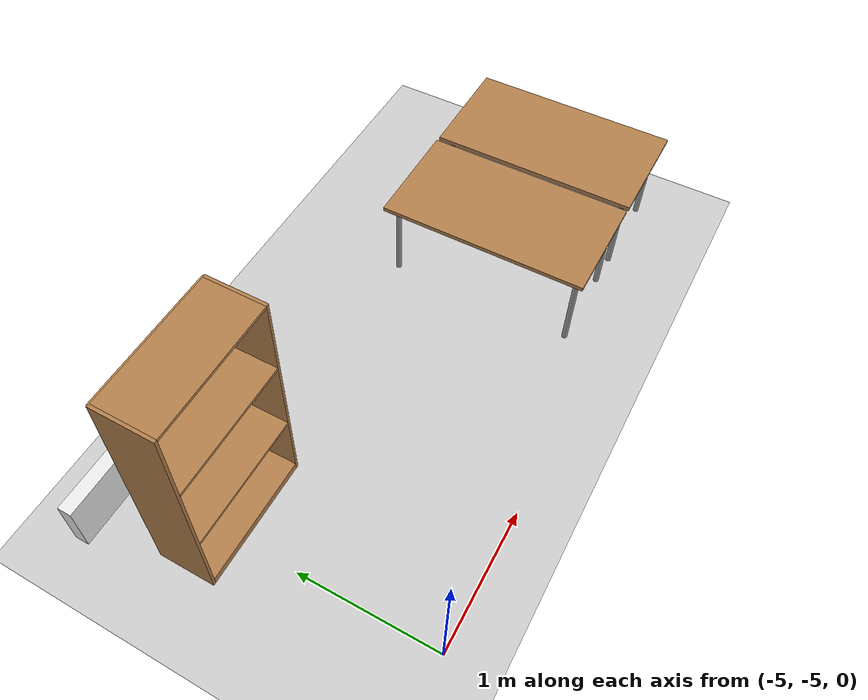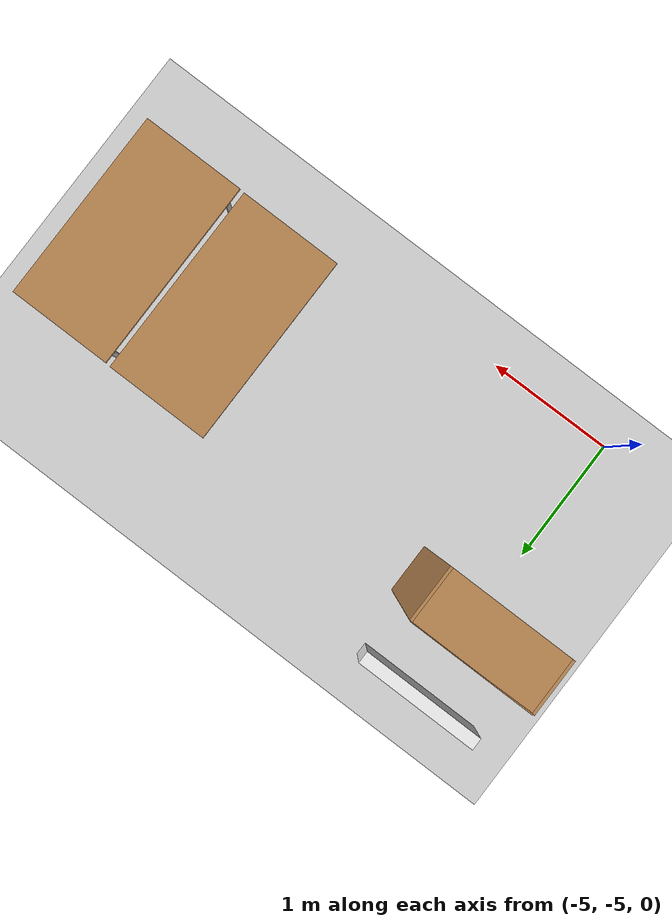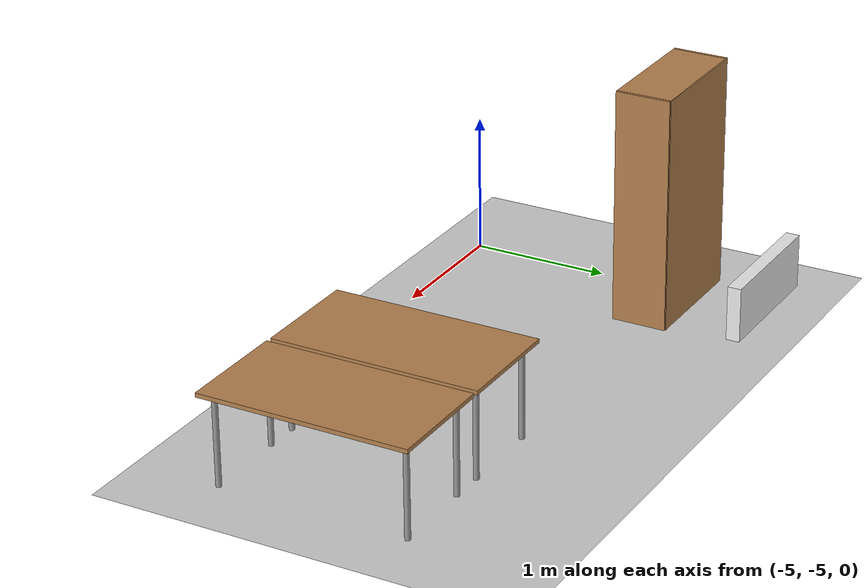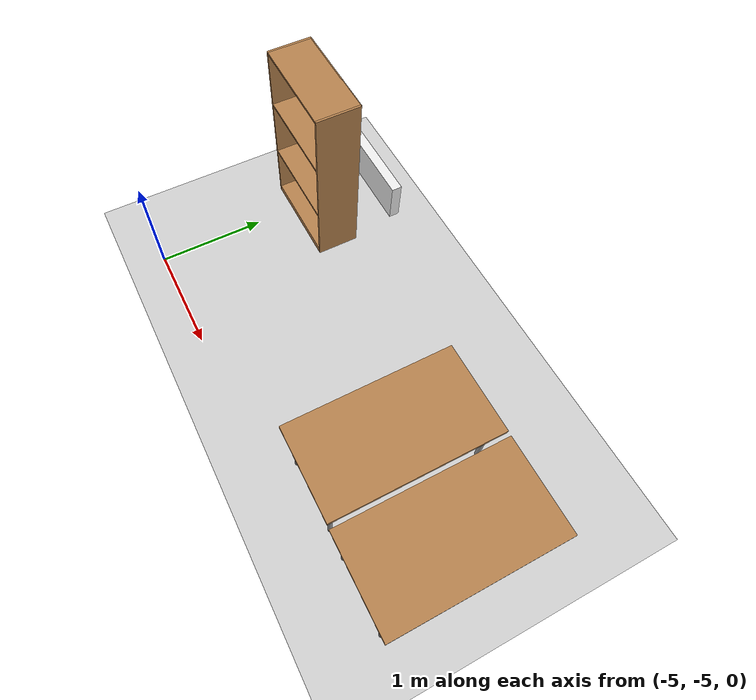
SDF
<sdf version="1.6">
 <world name="default">
  <model name="ground_plane">
   <static>1</static>
   <link name="link">
    <collision name="collision">
     <geometry><plane><normal>0 0 1</normal><size>100 100</size></plane></geometry>
     <surface>
      <contact><collide_bitmask>65535</collide_bitmask></contact>
      <friction><ode><mu>100</mu><mu2>50</mu2></ode></friction>
     </surface>
    </collision>
    <visual name="visual">
     <cast_shadows>0</cast_shadows>
     <geometry><plane><normal>0 0 1</normal><size>100 100</size></plane></geometry>
     <material>
      <script><uri>file://media/materials/scripts/gazebo.material</uri><name>Gazebo/Grey</name></script>
     </material>
    </visual>
   </link>
  </model>
  <model name="table">
   <link name="link">
    <pose>0 0 0 0 -0 1.57</pose>
    <visual name="visual1">
     <pose>0 0 0.67 0 -0 0</pose>
     <geometry><box><size>1.5 0.8 0.03</size></box></geometry>
     <material>
      <script><uri>file://media/materials/scripts/gazebo.material</uri><name>Gazebo/Wood</name></script>
     </material>
    </visual>
    <visual name="front_left_leg">
     <pose>0.68 0.3 0.335 0 -0 0</pose>
     <geometry><cylinder><radius>0.02</radius><length>0.67</length></cylinder></geometry>
     <material>
      <script><uri>file://media/materials/scripts/gazebo.material</uri><name>Gazebo/Grey</name></script>
     </material>
    </visual>
    <visual name="front_right_leg">
     <pose>0.68 -0.3 0.335 0 -0 0</pose>
     <geometry><cylinder><radius>0.02</radius><length>0.67</length></cylinder></geometry>
     <material>
      <script><uri>file://media/materials/scripts/gazebo.material</uri><name>Gazebo/Grey</name></script>
     </material>
    </visual>
    <visual name="back_right_leg">
     <pose>-0.68 -0.3 0.335 0 -0 0</pose>
     <geometry><cylinder><radius>0.02</radius><length>0.67</length></cylinder></geometry>
     <material>
      <script><uri>file://media/materials/scripts/gazebo.material</uri><name>Gazebo/Grey</name></script>
     </material>
    </visual>
    <visual name="back_left_leg">
     <pose>-0.68 0.3 0.335 0 -0 0</pose>
     <geometry><cylinder><radius>0.02</radius><length>0.67</length></cylinder></geometry>
     <material>
      <script><uri>file://media/materials/scripts/gazebo.material</uri><name>Gazebo/Grey</name></script>
     </material>
    </visual>
    <collision name="surface">
     <pose>0 0 0.67 0 -0 0</pose>
     <geometry><box><size>1.5 0.8 0.03</size></box></geometry>
     <surface>
      <friction>
       <ode><mu>0.6</mu><mu2>0.6</mu2><fdir1>0 0 0</fdir1><slip1>0</slip1><slip2>0</slip2></ode>
       <torsional>
        <coefficient>1</coefficient>
        <patch_radius>0</patch_radius>
        <surface_radius>0</surface_radius>
        <use_patch_radius>1</use_patch_radius>
        <ode><slip>0</slip></ode>
       </torsional>
      </friction>
      <bounce><restitution_coefficient>0</restitution_coefficient><threshold>1e+06</threshold></bounce>
      <contact>
       <collide_without_contact>0</collide_without_contact>
       <collide_without_contact_bitmask>1</collide_without_contact_bitmask>
       <collide_bitmask>1</collide_bitmask>
       <ode>
        <soft_cfm>0</soft_cfm>
        <soft_erp>0.2</soft_erp>
        <kp>1e+13</kp>
        <kd>1</kd>
        <max_vel>0.01</max_vel>
        <min_depth>0</min_depth>
       </ode>
       <bullet>
        <split_impulse>1</split_impulse>
        <split_impulse_penetration_threshold>-0.01</split_impulse_penetration_threshold>
        <soft_cfm>0</soft_cfm>
        <soft_erp>0.2</soft_erp>
        <kp>1e+13</kp>
        <kd>1</kd>
       </bullet>
      </contact>
     </surface>
    </collision>
    <collision name="front_left_leg">
     <pose>0.68 0.3 0.335 0 -0 0</pose>
     <geometry><cylinder><radius>0.02</radius><length>0.67</length></cylinder></geometry>
     <surface>
      <friction>
       <ode><mu>1</mu><mu2>1</mu2><fdir1>0 0 0</fdir1><slip1>0</slip1><slip2>0</slip2></ode>
       <torsional>
        <coefficient>1</coefficient>
        <patch_radius>0</patch_radius>
        <surface_radius>0</surface_radius>
        <use_patch_radius>1</use_patch_radius>
        <ode><slip>0</slip></ode>
       </torsional>
      </friction>
      <bounce><restitution_coefficient>0</restitution_coefficient><threshold>1e+06</threshold></bounce>
      <contact>
       <collide_without_contact>0</collide_without_contact>
       <collide_without_contact_bitmask>1</collide_without_contact_bitmask>
       <collide_bitmask>1</collide_bitmask>
       <ode>
        <soft_cfm>0</soft_cfm>
        <soft_erp>0.2</soft_erp>
        <kp>1e+13</kp>
        <kd>1</kd>
        <max_vel>0.01</max_vel>
        <min_depth>0</min_depth>
       </ode>
       <bullet>
        <split_impulse>1</split_impulse>
        <split_impulse_penetration_threshold>-0.01</split_impulse_penetration_threshold>
        <soft_cfm>0</soft_cfm>
        <soft_erp>0.2</soft_erp>
        <kp>1e+13</kp>
        <kd>1</kd>
       </bullet>
      </contact>
     </surface>
    </collision>
    <collision name="front_right_leg">
     <pose>0.68 -0.3 0.335 0 -0 0</pose>
     <geometry><cylinder><radius>0.02</radius><length>0.67</length></cylinder></geometry>
     <surface>
      <friction>
       <ode><mu>1</mu><mu2>1</mu2><fdir1>0 0 0</fdir1><slip1>0</slip1><slip2>0</slip2></ode>
       <torsional>
        <coefficient>1</coefficient>
        <patch_radius>0</patch_radius>
        <surface_radius>0</surface_radius>
        <use_patch_radius>1</use_patch_radius>
        <ode><slip>0</slip></ode>
       </torsional>
      </friction>
      <bounce><restitution_coefficient>0</restitution_coefficient><threshold>1e+06</threshold></bounce>
      <contact>
       <collide_without_contact>0</collide_without_contact>
       <collide_without_contact_bitmask>1</collide_without_contact_bitmask>
       <collide_bitmask>1</collide_bitmask>
       <ode>
        <soft_cfm>0</soft_cfm>
        <soft_erp>0.2</soft_erp>
        <kp>1e+13</kp>
        <kd>1</kd>
        <max_vel>0.01</max_vel>
        <min_depth>0</min_depth>
       </ode>
       <bullet>
        <split_impulse>1</split_impulse>
        <split_impulse_penetration_threshold>-0.01</split_impulse_penetration_threshold>
        <soft_cfm>0</soft_cfm>
        <soft_erp>0.2</soft_erp>
        <kp>1e+13</kp>
        <kd>1</kd>
       </bullet>
      </contact>
     </surface>
    </collision>
    <collision name="back_right_leg">
     <pose>-0.68 -0.3 0.335 0 -0 0</pose>
     <geometry><cylinder><radius>0.02</radius><length>0.67</length></cylinder></geometry>
     <surface>
      <friction>
       <ode><mu>1</mu><mu2>1</mu2><fdir1>0 0 0</fdir1><slip1>0</slip1><slip2>0</slip2></ode>
       <torsional>
        <coefficient>1</coefficient>
        <patch_radius>0</patch_radius>
        <surface_radius>0</surface_radius>
        <use_patch_radius>1</use_patch_radius>
        <ode><slip>0</slip></ode>
       </torsional>
      </friction>
      <bounce><restitution_coefficient>0</restitution_coefficient><threshold>1e+06</threshold></bounce>
      <contact>
       <collide_without_contact>0</collide_without_contact>
       <collide_without_contact_bitmask>1</collide_without_contact_bitmask>
       <collide_bitmask>1</collide_bitmask>
       <ode>
        <soft_cfm>0</soft_cfm>
        <soft_erp>0.2</soft_erp>
        <kp>1e+13</kp>
        <kd>1</kd>
        <max_vel>0.01</max_vel>
        <min_depth>0</min_depth>
       </ode>
       <bullet>
        <split_impulse>1</split_impulse>
        <split_impulse_penetration_threshold>-0.01</split_impulse_penetration_threshold>
        <soft_cfm>0</soft_cfm>
        <soft_erp>0.2</soft_erp>
        <kp>1e+13</kp>
        <kd>1</kd>
       </bullet>
      </contact>
     </surface>
    </collision>
    <collision name="back_left_leg">
     <pose>-0.68 0.3 0.335 0 -0 0</pose>
     <geometry><cylinder><radius>0.02</radius><length>0.67</length></cylinder></geometry>
     <surface>
      <friction>
       <ode><mu>1</mu><mu2>1</mu2><fdir1>0 0 0</fdir1><slip1>0</slip1><slip2>0</slip2></ode>
       <torsional>
        <coefficient>1</coefficient>
        <patch_radius>0</patch_radius>
        <surface_radius>0</surface_radius>
        <use_patch_radius>1</use_patch_radius>
        <ode><slip>0</slip></ode>
       </torsional>
      </friction>
      <bounce><restitution_coefficient>0</restitution_coefficient><threshold>1e+06</threshold></bounce>
      <contact>
       <collide_without_contact>0</collide_without_contact>
       <collide_without_contact_bitmask>1</collide_without_contact_bitmask>
       <collide_bitmask>1</collide_bitmask>
       <ode>
        <soft_cfm>0</soft_cfm>
        <soft_erp>0.2</soft_erp>
        <kp>1e+13</kp>
        <kd>1</kd>
        <max_vel>0.01</max_vel>
        <min_depth>0</min_depth>
       </ode>
       <bullet>
        <split_impulse>1</split_impulse>
        <split_impulse_penetration_threshold>-0.01</split_impulse_penetration_threshold>
        <soft_cfm>0</soft_cfm>
        <soft_erp>0.2</soft_erp>
        <kp>1e+13</kp>
        <kd>1</kd>
       </bullet>
      </contact>
     </surface>
    </collision>
   </link>
   <static>1</static>
   <pose>-2.27306 -4.03356 0 0 -0 0</pose>
  </model>
  <model name="table_1">
   <link name="link">
    <pose>0 0 0 0 -0 1.57</pose>
    <visual name="visual1">
     <pose>0 0 0.67 0 -0 0</pose>
     <geometry><box><size>1.5 0.8 0.03</size></box></geometry>
     <material>
      <script><uri>file://media/materials/scripts/gazebo.material</uri><name>Gazebo/Wood</name></script>
     </material>
    </visual>
    <visual name="front_left_leg">
     <pose>0.68 0.3 0.335 0 -0 0</pose>
     <geometry><cylinder><radius>0.02</radius><length>0.67</length></cylinder></geometry>
     <material>
      <script><uri>file://media/materials/scripts/gazebo.material</uri><name>Gazebo/Grey</name></script>
     </material>
    </visual>
    <visual name="front_right_leg">
     <pose>0.68 -0.3 0.335 0 -0 0</pose>
     <geometry><cylinder><radius>0.02</radius><length>0.67</length></cylinder></geometry>
     <material>
      <script><uri>file://media/materials/scripts/gazebo.material</uri><name>Gazebo/Grey</name></script>
     </material>
    </visual>
    <visual name="back_right_leg">
     <pose>-0.68 -0.3 0.335 0 -0 0</pose>
     <geometry><cylinder><radius>0.02</radius><length>0.67</length></cylinder></geometry>
     <material>
      <script><uri>file://media/materials/scripts/gazebo.material</uri><name>Gazebo/Grey</name></script>
     </material>
    </visual>
    <visual name="back_left_leg">
     <pose>-0.68 0.3 0.335 0 -0 0</pose>
     <geometry><cylinder><radius>0.02</radius><length>0.67</length></cylinder></geometry>
     <material>
      <script><uri>file://media/materials/scripts/gazebo.material</uri><name>Gazebo/Grey</name></script>
     </material>
    </visual>
    <collision name="surface">
     <pose>0 0 0.67 0 -0 0</pose>
     <geometry><box><size>1.5 0.8 0.03</size></box></geometry>
     <surface>
      <friction>
       <ode><mu>0.6</mu><mu2>0.6</mu2><fdir1>0 0 0</fdir1><slip1>0</slip1><slip2>0</slip2></ode>
       <torsional>
        <coefficient>1</coefficient>
        <patch_radius>0</patch_radius>
        <surface_radius>0</surface_radius>
        <use_patch_radius>1</use_patch_radius>
        <ode><slip>0</slip></ode>
       </torsional>
      </friction>
      <bounce><restitution_coefficient>0</restitution_coefficient><threshold>1e+06</threshold></bounce>
      <contact>
       <collide_without_contact>0</collide_without_contact>
       <collide_without_contact_bitmask>1</collide_without_contact_bitmask>
       <collide_bitmask>1</collide_bitmask>
       <ode>
        <soft_cfm>0</soft_cfm>
        <soft_erp>0.2</soft_erp>
        <kp>1e+13</kp>
        <kd>1</kd>
        <max_vel>0.01</max_vel>
        <min_depth>0</min_depth>
       </ode>
       <bullet>
        <split_impulse>1</split_impulse>
        <split_impulse_penetration_threshold>-0.01</split_impulse_penetration_threshold>
        <soft_cfm>0</soft_cfm>
        <soft_erp>0.2</soft_erp>
        <kp>1e+13</kp>
        <kd>1</kd>
       </bullet>
      </contact>
     </surface>
    </collision>
    <collision name="front_left_leg">
     <pose>0.68 0.3 0.335 0 -0 0</pose>
     <geometry><cylinder><radius>0.02</radius><length>0.67</length></cylinder></geometry>
     <surface>
      <friction>
       <ode><mu>1</mu><mu2>1</mu2><fdir1>0 0 0</fdir1><slip1>0</slip1><slip2>0</slip2></ode>
       <torsional>
        <coefficient>1</coefficient>
        <patch_radius>0</patch_radius>
        <surface_radius>0</surface_radius>
        <use_patch_radius>1</use_patch_radius>
        <ode><slip>0</slip></ode>
       </torsional>
      </friction>
      <bounce><restitution_coefficient>0</restitution_coefficient><threshold>1e+06</threshold></bounce>
      <contact>
       <collide_without_contact>0</collide_without_contact>
       <collide_without_contact_bitmask>1</collide_without_contact_bitmask>
       <collide_bitmask>1</collide_bitmask>
       <ode>
        <soft_cfm>0</soft_cfm>
        <soft_erp>0.2</soft_erp>
        <kp>1e+13</kp>
        <kd>1</kd>
        <max_vel>0.01</max_vel>
        <min_depth>0</min_depth>
       </ode>
       <bullet>
        <split_impulse>1</split_impulse>
        <split_impulse_penetration_threshold>-0.01</split_impulse_penetration_threshold>
        <soft_cfm>0</soft_cfm>
        <soft_erp>0.2</soft_erp>
        <kp>1e+13</kp>
        <kd>1</kd>
       </bullet>
      </contact>
     </surface>
    </collision>
    <collision name="front_right_leg">
     <pose>0.68 -0.3 0.335 0 -0 0</pose>
     <geometry><cylinder><radius>0.02</radius><length>0.67</length></cylinder></geometry>
     <surface>
      <friction>
       <ode><mu>1</mu><mu2>1</mu2><fdir1>0 0 0</fdir1><slip1>0</slip1><slip2>0</slip2></ode>
       <torsional>
        <coefficient>1</coefficient>
        <patch_radius>0</patch_radius>
        <surface_radius>0</surface_radius>
        <use_patch_radius>1</use_patch_radius>
        <ode><slip>0</slip></ode>
       </torsional>
      </friction>
      <bounce><restitution_coefficient>0</restitution_coefficient><threshold>1e+06</threshold></bounce>
      <contact>
       <collide_without_contact>0</collide_without_contact>
       <collide_without_contact_bitmask>1</collide_without_contact_bitmask>
       <collide_bitmask>1</collide_bitmask>
       <ode>
        <soft_cfm>0</soft_cfm>
        <soft_erp>0.2</soft_erp>
        <kp>1e+13</kp>
        <kd>1</kd>
        <max_vel>0.01</max_vel>
        <min_depth>0</min_depth>
       </ode>
       <bullet>
        <split_impulse>1</split_impulse>
        <split_impulse_penetration_threshold>-0.01</split_impulse_penetration_threshold>
        <soft_cfm>0</soft_cfm>
        <soft_erp>0.2</soft_erp>
        <kp>1e+13</kp>
        <kd>1</kd>
       </bullet>
      </contact>
     </surface>
    </collision>
    <collision name="back_right_leg">
     <pose>-0.68 -0.3 0.335 0 -0 0</pose>
     <geometry><cylinder><radius>0.02</radius><length>0.67</length></cylinder></geometry>
     <surface>
      <friction>
       <ode><mu>1</mu><mu2>1</mu2><fdir1>0 0 0</fdir1><slip1>0</slip1><slip2>0</slip2></ode>
       <torsional>
        <coefficient>1</coefficient>
        <patch_radius>0</patch_radius>
        <surface_radius>0</surface_radius>
        <use_patch_radius>1</use_patch_radius>
        <ode><slip>0</slip></ode>
       </torsional>
      </friction>
      <bounce><restitution_coefficient>0</restitution_coefficient><threshold>1e+06</threshold></bounce>
      <contact>
       <collide_without_contact>0</collide_without_contact>
       <collide_without_contact_bitmask>1</collide_without_contact_bitmask>
       <collide_bitmask>1</collide_bitmask>
       <ode>
        <soft_cfm>0</soft_cfm>
        <soft_erp>0.2</soft_erp>
        <kp>1e+13</kp>
        <kd>1</kd>
        <max_vel>0.01</max_vel>
        <min_depth>0</min_depth>
       </ode>
       <bullet>
        <split_impulse>1</split_impulse>
        <split_impulse_penetration_threshold>-0.01</split_impulse_penetration_threshold>
        <soft_cfm>0</soft_cfm>
        <soft_erp>0.2</soft_erp>
        <kp>1e+13</kp>
        <kd>1</kd>
       </bullet>
      </contact>
     </surface>
    </collision>
    <collision name="back_left_leg">
     <pose>-0.68 0.3 0.335 0 -0 0</pose>
     <geometry><cylinder><radius>0.02</radius><length>0.67</length></cylinder></geometry>
     <surface>
      <friction>
       <ode><mu>1</mu><mu2>1</mu2><fdir1>0 0 0</fdir1><slip1>0</slip1><slip2>0</slip2></ode>
       <torsional>
        <coefficient>1</coefficient>
        <patch_radius>0</patch_radius>
        <surface_radius>0</surface_radius>
        <use_patch_radius>1</use_patch_radius>
        <ode><slip>0</slip></ode>
       </torsional>
      </friction>
      <bounce><restitution_coefficient>0</restitution_coefficient><threshold>1e+06</threshold></bounce>
      <contact>
       <collide_without_contact>0</collide_without_contact>
       <collide_without_contact_bitmask>1</collide_without_contact_bitmask>
       <collide_bitmask>1</collide_bitmask>
       <ode>
        <soft_cfm>0</soft_cfm>
        <soft_erp>0.2</soft_erp>
        <kp>1e+13</kp>
        <kd>1</kd>
        <max_vel>0.01</max_vel>
        <min_depth>0</min_depth>
       </ode>
       <bullet>
        <split_impulse>1</split_impulse>
        <split_impulse_penetration_threshold>-0.01</split_impulse_penetration_threshold>
        <soft_cfm>0</soft_cfm>
        <soft_erp>0.2</soft_erp>
        <kp>1e+13</kp>
        <kd>1</kd>
       </bullet>
      </contact>
     </surface>
    </collision>
   </link>
   <static>1</static>
   <pose>-1.43476 -4.0385 0 0 -0 0</pose>
  </model>
  <model name="bookshelf_0">
   <link name="link">
    <inertial><mass>1</mass></inertial>
    <visual name="visual1">
     <pose>0 0.005 0.85 0 -0 0</pose>
     <geometry><box><size>0.9 0.01 1.7</size></box></geometry>
     <material>
      <script><uri>file://media/materials/scripts/gazebo.material</uri><name>Gazebo/Wood</name></script>
     </material>
    </visual>
    <visual name="visual3">
     <pose>-0.45 -0.195 0.85 0 -0 0</pose>
     <geometry><box><size>0.02 0.4 1.7</size></box></geometry>
     <material>
      <script><uri>file://media/materials/scripts/gazebo.material</uri><name>Gazebo/Wood</name></script>
     </material>
    </visual>
    <visual name="visual2">
     <pose>0.45 -0.195 0.85 0 -0 0</pose>
     <geometry><box><size>0.02 0.4 1.7</size></box></geometry>
     <material>
      <script><uri>file://media/materials/scripts/gazebo.material</uri><name>Gazebo/Wood</name></script>
     </material>
    </visual>
    <visual name="visual4">
     <pose>0 -0.195 0.03 0 -0 0</pose>
     <geometry><box><size>0.88 0.4 0.06</size></box></geometry>
     <material>
      <script><uri>file://media/materials/scripts/gazebo.material</uri><name>Gazebo/Wood</name></script>
     </material>
    </visual>
    <visual name="visual5">
     <pose>0 -0.195 1.69 0 -0 0</pose>
     <geometry><box><size>0.88 0.4 0.02</size></box></geometry>
     <material>
      <script><uri>file://media/materials/scripts/gazebo.material</uri><name>Gazebo/Wood</name></script>
     </material>
    </visual>
    <visual name="visual6">
     <pose>0 -0.195 0.56 0 -0 0</pose>
     <geometry><box><size>0.88 0.4 0.02</size></box></geometry>
     <material>
      <script><uri>file://media/materials/scripts/gazebo.material</uri><name>Gazebo/Wood</name></script>
     </material>
    </visual>
    <visual name="visual7">
     <pose>0 -0.195 1.14 0 -0 0</pose>
     <geometry><box><size>0.88 0.4 0.02</size></box></geometry>
     <material>
      <script><uri>file://media/materials/scripts/gazebo.material</uri><name>Gazebo/Wood</name></script>
     </material>
    </visual>
    <collision name="back">
     <pose>0 0.005 0.85 0 -0 0</pose>
     <geometry><box><size>0.9 0.01 1.7</size></box></geometry>
     <surface>
      <friction>
       <ode><mu>1</mu><mu2>1</mu2><fdir1>0 0 0</fdir1><slip1>0</slip1><slip2>0</slip2></ode>
       <torsional>
        <coefficient>1</coefficient>
        <patch_radius>0</patch_radius>
        <surface_radius>0</surface_radius>
        <use_patch_radius>1</use_patch_radius>
        <ode><slip>0</slip></ode>
       </torsional>
      </friction>
      <bounce><restitution_coefficient>0</restitution_coefficient><threshold>1e+06</threshold></bounce>
      <contact>
       <collide_without_contact>0</collide_without_contact>
       <collide_without_contact_bitmask>1</collide_without_contact_bitmask>
       <collide_bitmask>1</collide_bitmask>
       <ode>
        <soft_cfm>0</soft_cfm>
        <soft_erp>0.2</soft_erp>
        <kp>1e+13</kp>
        <kd>1</kd>
        <max_vel>0.01</max_vel>
        <min_depth>0</min_depth>
       </ode>
       <bullet>
        <split_impulse>1</split_impulse>
        <split_impulse_penetration_threshold>-0.01</split_impulse_penetration_threshold>
        <soft_cfm>0</soft_cfm>
        <soft_erp>0.2</soft_erp>
        <kp>1e+13</kp>
        <kd>1</kd>
       </bullet>
      </contact>
     </surface>
    </collision>
    <collision name="left_side">
     <pose>0.45 -0.195 0.85 0 -0 0</pose>
     <geometry><box><size>0.02 0.4 1.7</size></box></geometry>
     <surface>
      <friction>
       <ode><mu>1</mu><mu2>1</mu2><fdir1>0 0 0</fdir1><slip1>0</slip1><slip2>0</slip2></ode>
       <torsional>
        <coefficient>1</coefficient>
        <patch_radius>0</patch_radius>
        <surface_radius>0</surface_radius>
        <use_patch_radius>1</use_patch_radius>
        <ode><slip>0</slip></ode>
       </torsional>
      </friction>
      <bounce><restitution_coefficient>0</restitution_coefficient><threshold>1e+06</threshold></bounce>
      <contact>
       <collide_without_contact>0</collide_without_contact>
       <collide_without_contact_bitmask>1</collide_without_contact_bitmask>
       <collide_bitmask>1</collide_bitmask>
       <ode>
        <soft_cfm>0</soft_cfm>
        <soft_erp>0.2</soft_erp>
        <kp>1e+13</kp>
        <kd>1</kd>
        <max_vel>0.01</max_vel>
        <min_depth>0</min_depth>
       </ode>
       <bullet>
        <split_impulse>1</split_impulse>
        <split_impulse_penetration_threshold>-0.01</split_impulse_penetration_threshold>
        <soft_cfm>0</soft_cfm>
        <soft_erp>0.2</soft_erp>
        <kp>1e+13</kp>
        <kd>1</kd>
       </bullet>
      </contact>
     </surface>
    </collision>
    <collision name="right_side">
     <pose>-0.45 -0.195 0.85 0 -0 0</pose>
     <geometry><box><size>0.02 0.4 1.7</size></box></geometry>
     <surface>
      <friction>
       <ode><mu>1</mu><mu2>1</mu2><fdir1>0 0 0</fdir1><slip1>0</slip1><slip2>0</slip2></ode>
       <torsional>
        <coefficient>1</coefficient>
        <patch_radius>0</patch_radius>
        <surface_radius>0</surface_radius>
        <use_patch_radius>1</use_patch_radius>
        <ode><slip>0</slip></ode>
       </torsional>
      </friction>
      <bounce><restitution_coefficient>0</restitution_coefficient><threshold>1e+06</threshold></bounce>
      <contact>
       <collide_without_contact>0</collide_without_contact>
       <collide_without_contact_bitmask>1</collide_without_contact_bitmask>
       <collide_bitmask>1</collide_bitmask>
       <ode>
        <soft_cfm>0</soft_cfm>
        <soft_erp>0.2</soft_erp>
        <kp>1e+13</kp>
        <kd>1</kd>
        <max_vel>0.01</max_vel>
        <min_depth>0</min_depth>
       </ode>
       <bullet>
        <split_impulse>1</split_impulse>
        <split_impulse_penetration_threshold>-0.01</split_impulse_penetration_threshold>
        <soft_cfm>0</soft_cfm>
        <soft_erp>0.2</soft_erp>
        <kp>1e+13</kp>
        <kd>1</kd>
       </bullet>
      </contact>
     </surface>
    </collision>
    <collision name="bottom">
     <pose>0 -0.195 0.03 0 -0 0</pose>
     <geometry><box><size>0.88 0.4 0.06</size></box></geometry>
     <surface>
      <friction>
       <ode><mu>1</mu><mu2>1</mu2><fdir1>0 0 0</fdir1><slip1>0</slip1><slip2>0</slip2></ode>
       <torsional>
        <coefficient>1</coefficient>
        <patch_radius>0</patch_radius>
        <surface_radius>0</surface_radius>
        <use_patch_radius>1</use_patch_radius>
        <ode><slip>0</slip></ode>
       </torsional>
      </friction>
      <bounce><restitution_coefficient>0</restitution_coefficient><threshold>1e+06</threshold></bounce>
      <contact>
       <collide_without_contact>0</collide_without_contact>
       <collide_without_contact_bitmask>1</collide_without_contact_bitmask>
       <collide_bitmask>1</collide_bitmask>
       <ode>
        <soft_cfm>0</soft_cfm>
        <soft_erp>0.2</soft_erp>
        <kp>1e+13</kp>
        <kd>1</kd>
        <max_vel>0.01</max_vel>
        <min_depth>0</min_depth>
       </ode>
       <bullet>
        <split_impulse>1</split_impulse>
        <split_impulse_penetration_threshold>-0.01</split_impulse_penetration_threshold>
        <soft_cfm>0</soft_cfm>
        <soft_erp>0.2</soft_erp>
        <kp>1e+13</kp>
        <kd>1</kd>
       </bullet>
      </contact>
     </surface>
    </collision>
    <collision name="top">
     <pose>0 -0.195 1.69 0 -0 0</pose>
     <geometry><box><size>0.88 0.4 0.02</size></box></geometry>
     <surface>
      <friction>
       <ode><mu>1</mu><mu2>1</mu2><fdir1>0 0 0</fdir1><slip1>0</slip1><slip2>0</slip2></ode>
       <torsional>
        <coefficient>1</coefficient>
        <patch_radius>0</patch_radius>
        <surface_radius>0</surface_radius>
        <use_patch_radius>1</use_patch_radius>
        <ode><slip>0</slip></ode>
       </torsional>
      </friction>
      <bounce><restitution_coefficient>0</restitution_coefficient><threshold>1e+06</threshold></bounce>
      <contact>
       <collide_without_contact>0</collide_without_contact>
       <collide_without_contact_bitmask>1</collide_without_contact_bitmask>
       <collide_bitmask>1</collide_bitmask>
       <ode>
        <soft_cfm>0</soft_cfm>
        <soft_erp>0.2</soft_erp>
        <kp>1e+13</kp>
        <kd>1</kd>
        <max_vel>0.01</max_vel>
        <min_depth>0</min_depth>
       </ode>
       <bullet>
        <split_impulse>1</split_impulse>
        <split_impulse_penetration_threshold>-0.01</split_impulse_penetration_threshold>
        <soft_cfm>0</soft_cfm>
        <soft_erp>0.2</soft_erp>
        <kp>1e+13</kp>
        <kd>1</kd>
       </bullet>
      </contact>
     </surface>
    </collision>
    <collision name="low_shelf">
     <pose>0 -0.195 0.58 0 -0 0</pose>
     <geometry><box><size>0.88 0.4 0.02</size></box></geometry>
     <surface>
      <friction>
       <ode><mu>1</mu><mu2>1</mu2><fdir1>0 0 0</fdir1><slip1>0</slip1><slip2>0</slip2></ode>
       <torsional>
        <coefficient>1</coefficient>
        <patch_radius>0</patch_radius>
        <surface_radius>0</surface_radius>
        <use_patch_radius>1</use_patch_radius>
        <ode><slip>0</slip></ode>
       </torsional>
      </friction>
      <bounce><restitution_coefficient>0</restitution_coefficient><threshold>1e+06</threshold></bounce>
      <contact>
       <collide_without_contact>0</collide_without_contact>
       <collide_without_contact_bitmask>1</collide_without_contact_bitmask>
       <collide_bitmask>1</collide_bitmask>
       <ode>
        <soft_cfm>0</soft_cfm>
        <soft_erp>0.2</soft_erp>
        <kp>1e+13</kp>
        <kd>1</kd>
        <max_vel>0.01</max_vel>
        <min_depth>0</min_depth>
       </ode>
       <bullet>
        <split_impulse>1</split_impulse>
        <split_impulse_penetration_threshold>-0.01</split_impulse_penetration_threshold>
        <soft_cfm>0</soft_cfm>
        <soft_erp>0.2</soft_erp>
        <kp>1e+13</kp>
        <kd>1</kd>
       </bullet>
      </contact>
     </surface>
    </collision>
    <collision name="high_shelf">
     <pose>0 -0.195 1.14 0 -0 0</pose>
     <geometry><box><size>0.88 0.4 0.02</size></box></geometry>
     <surface>
      <friction>
       <ode><mu>1</mu><mu2>1</mu2><fdir1>0 0 0</fdir1><slip1>0</slip1><slip2>0</slip2></ode>
       <torsional>
        <coefficient>1</coefficient>
        <patch_radius>0</patch_radius>
        <surface_radius>0</surface_radius>
        <use_patch_radius>1</use_patch_radius>
        <ode><slip>0</slip></ode>
       </torsional>
      </friction>
      <bounce><restitution_coefficient>0</restitution_coefficient><threshold>1e+06</threshold></bounce>
      <contact>
       <collide_without_contact>0</collide_without_contact>
       <collide_without_contact_bitmask>1</collide_without_contact_bitmask>
       <collide_bitmask>1</collide_bitmask>
       <ode>
        <soft_cfm>0</soft_cfm>
        <soft_erp>0.2</soft_erp>
        <kp>1e+13</kp>
        <kd>1</kd>
        <max_vel>0.01</max_vel>
        <min_depth>0</min_depth>
       </ode>
       <bullet>
        <split_impulse>1</split_impulse>
        <split_impulse_penetration_threshold>-0.01</split_impulse_penetration_threshold>
        <soft_cfm>0</soft_cfm>
        <soft_erp>0.2</soft_erp>
        <kp>1e+13</kp>
        <kd>1</kd>
       </bullet>
      </contact>
     </surface>
    </collision>
   </link>
   <static>1</static>
   <pose>-4.84773 -3.21866 0 0 -0 0</pose>
  </model>
  <model name="fence1_0">
   <link name="link">
    <inertial>
     <mass>1</mass>
     <inertia>
      <ixx>0.166667</ixx>
      <ixy>0</ixy>
      <ixz>0</ixz>
      <iyy>0.166667</iyy>
      <iyz>0</iyz>
      <izz>0.166667</izz>
     </inertia>
    </inertial>
    <visual name="visual">
     <geometry><box><size>1 0.1 0.4</size></box></geometry>
     <material>
      <script><name>Gazebo/White</name><uri>file://media/materials/scripts/gazebo.material</uri></script>
     </material>
     <pose>0 0 0.2 0 -0 0</pose>
    </visual>
    <collision name="collision">
     <pose>0 0 0.2 0 -0 0</pose>
     <geometry><box><size>1 0.1 0.4</size></box></geometry>
     <surface>
      <friction>
       <ode><mu>1</mu><mu2>1</mu2><fdir1>0 0 0</fdir1><slip1>0</slip1><slip2>0</slip2></ode>
       <torsional>
        <coefficient>1</coefficient>
        <patch_radius>0</patch_radius>
        <surface_radius>0</surface_radius>
        <use_patch_radius>1</use_patch_radius>
        <ode><slip>0</slip></ode>
       </torsional>
      </friction>
      <bounce><restitution_coefficient>0</restitution_coefficient><threshold>1e+06</threshold></bounce>
      <contact>
       <collide_without_contact>0</collide_without_contact>
       <collide_without_contact_bitmask>1</collide_without_contact_bitmask>
       <collide_bitmask>1</collide_bitmask>
       <ode>
        <soft_cfm>0</soft_cfm>
        <soft_erp>0.2</soft_erp>
        <kp>1e+13</kp>
        <kd>1</kd>
        <max_vel>0.01</max_vel>
        <min_depth>0</min_depth>
       </ode>
       <bullet>
        <split_impulse>1</split_impulse>
        <split_impulse_penetration_threshold>-0.01</split_impulse_penetration_threshold>
        <soft_cfm>0</soft_cfm>
        <soft_erp>0.2</soft_erp>
        <kp>1e+13</kp>
        <kd>1</kd>
       </bullet>
      </contact>
     </surface>
    </collision>
   </link>
   <static>0</static>
   <pose>-4.97111 -2.73562 -2e-06 0 5e-06 0</pose>
  </model>
 </world>
</sdf>
